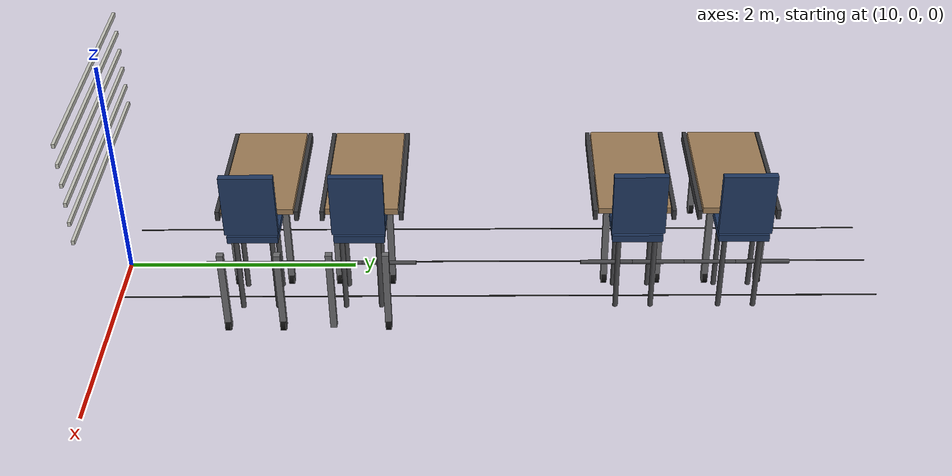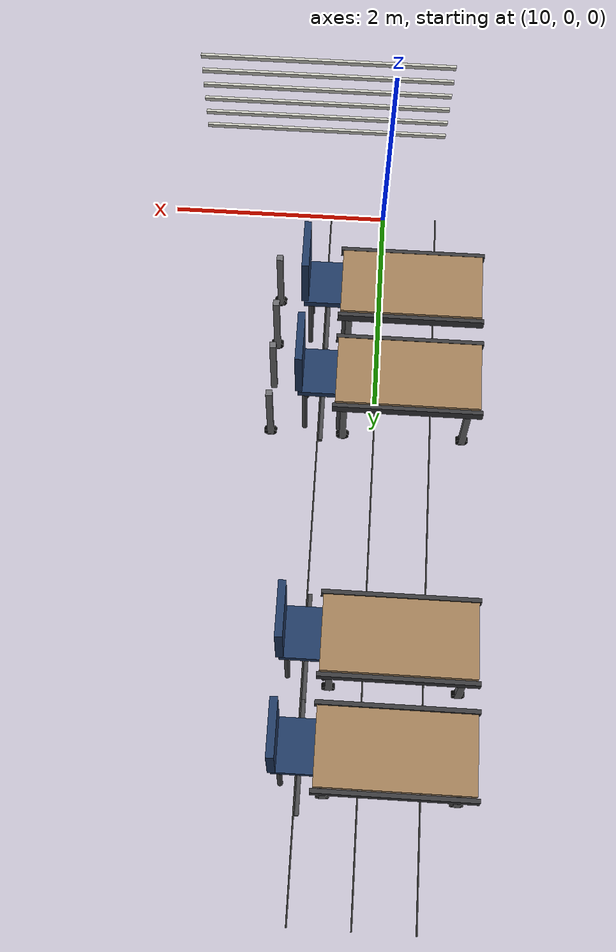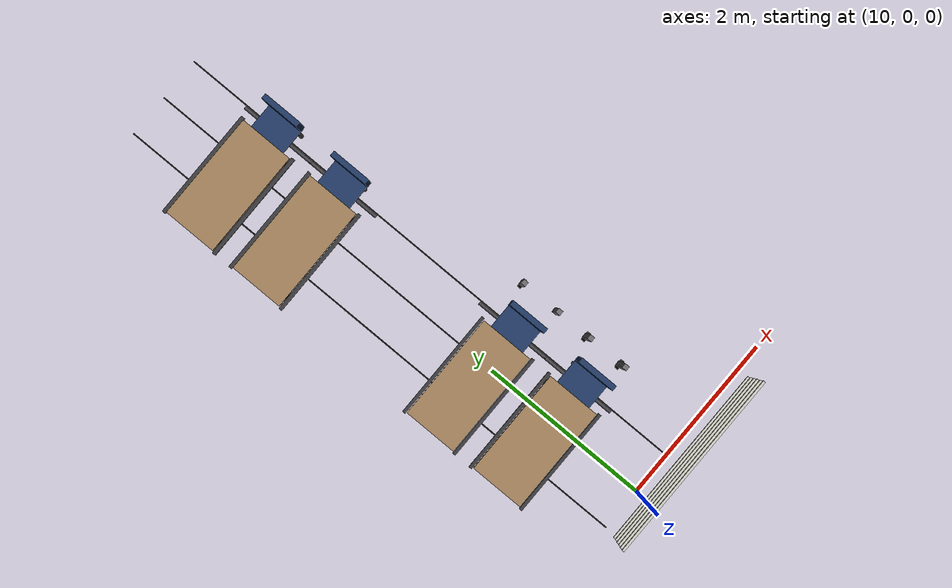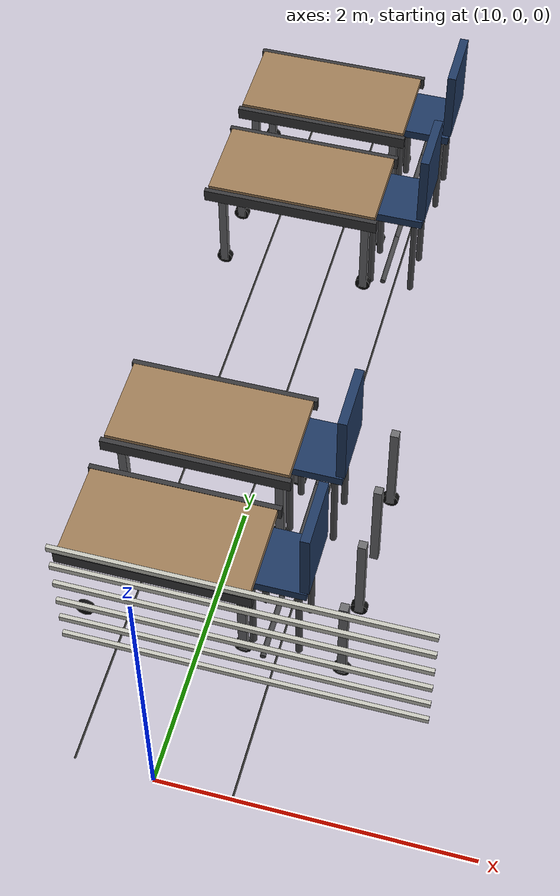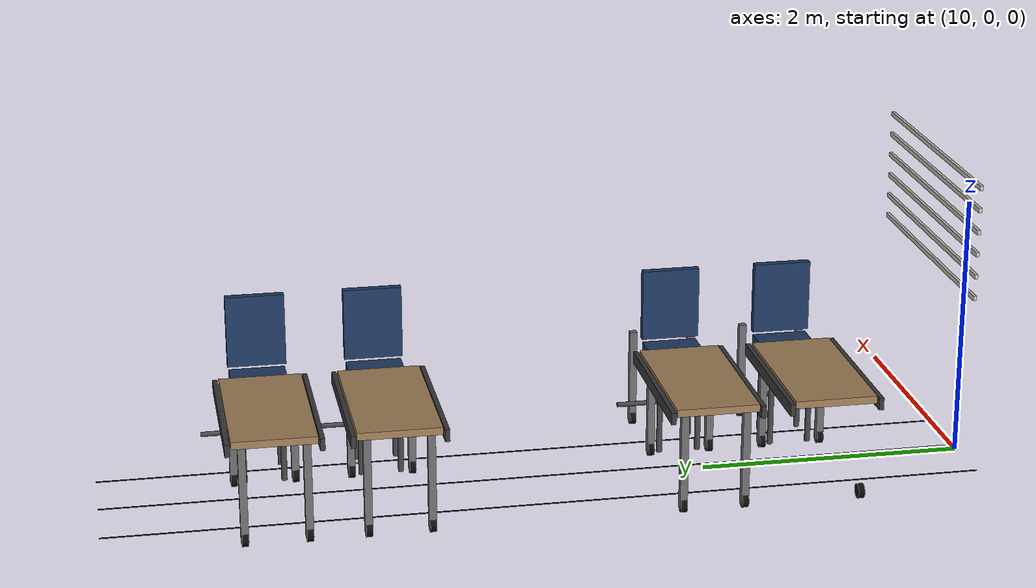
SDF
<sdf version="1.10">
 <model name="room_427_furnishings">
  <static>true</static>
  <link name="tile_seam_x_19">
   <pose>9.5 3.27 0.032 0 0 0</pose>
   <visual name="visual">
    <geometry><box><size>0.012 6.54 0.004</size></box></geometry>
    <material>
     <ambient>0.13 0.13 0.13 1</ambient>
     <diffuse>0.16 0.16 0.15 1</diffuse>
     <specular>0.04 0.04 0.04 1</specular>
    </material>
   </visual>
  </link>
  <link name="tile_seam_x_20">
   <pose>10 3.27 0.032 0 0 0</pose>
   <visual name="visual">
    <geometry><box><size>0.012 6.54 0.004</size></box></geometry>
    <material>
     <ambient>0.13 0.13 0.13 1</ambient>
     <diffuse>0.16 0.16 0.15 1</diffuse>
     <specular>0.04 0.04 0.04 1</specular>
    </material>
   </visual>
  </link>
  <link name="tile_seam_x_21">
   <pose>10.5 3.27 0.032 0 0 0</pose>
   <visual name="visual">
    <geometry><box><size>0.012 6.54 0.004</size></box></geometry>
    <material>
     <ambient>0.13 0.13 0.13 1</ambient>
     <diffuse>0.16 0.16 0.15 1</diffuse>
     <specular>0.04 0.04 0.04 1</specular>
    </material>
   </visual>
  </link>
  <link name="blind_4_1">
   <pose>10.57 0.085 2.25 0 0 0</pose>
   <visual name="visual">
    <geometry><box><size>2.06 0.024 0.035</size></box></geometry>
    <material>
     <ambient>0.72 0.72 0.68 1</ambient>
     <diffuse>0.78 0.78 0.74 1</diffuse>
     <specular>0.12 0.12 0.12 1</specular>
    </material>
   </visual>
  </link>
  <link name="blind_4_2">
   <pose>10.57 0.085 2.08 0 0 0</pose>
   <visual name="visual">
    <geometry><box><size>2.06 0.024 0.035</size></box></geometry>
    <material>
     <ambient>0.72 0.72 0.68 1</ambient>
     <diffuse>0.78 0.78 0.74 1</diffuse>
     <specular>0.12 0.12 0.12 1</specular>
    </material>
   </visual>
  </link>
  <link name="blind_4_3">
   <pose>10.57 0.085 1.91 0 0 0</pose>
   <visual name="visual">
    <geometry><box><size>2.06 0.024 0.035</size></box></geometry>
    <material>
     <ambient>0.72 0.72 0.68 1</ambient>
     <diffuse>0.78 0.78 0.74 1</diffuse>
     <specular>0.12 0.12 0.12 1</specular>
    </material>
   </visual>
  </link>
  <link name="blind_4_4">
   <pose>10.57 0.085 1.74 0 0 0</pose>
   <visual name="visual">
    <geometry><box><size>2.06 0.024 0.035</size></box></geometry>
    <material>
     <ambient>0.72 0.72 0.68 1</ambient>
     <diffuse>0.78 0.78 0.74 1</diffuse>
     <specular>0.12 0.12 0.12 1</specular>
    </material>
   </visual>
  </link>
  <link name="blind_4_5">
   <pose>10.57 0.085 1.57 0 0 0</pose>
   <visual name="visual">
    <geometry><box><size>2.06 0.024 0.035</size></box></geometry>
    <material>
     <ambient>0.72 0.72 0.68 1</ambient>
     <diffuse>0.78 0.78 0.74 1</diffuse>
     <specular>0.12 0.12 0.12 1</specular>
    </material>
   </visual>
  </link>
  <link name="blind_4_6">
   <pose>10.57 0.085 1.4 0 0 0</pose>
   <visual name="visual">
    <geometry><box><size>2.06 0.024 0.035</size></box></geometry>
    <material>
     <ambient>0.72 0.72 0.68 1</ambient>
     <diffuse>0.78 0.78 0.74 1</diffuse>
     <specular>0.12 0.12 0.12 1</specular>
    </material>
   </visual>
  </link>
  <link name="tall_mobile_table_5_top">
   <pose>9.75 1.24 0.82 0 0 0</pose>
   <collision name="collision"><geometry><box><size>1.22 0.61 0.055</size></box></geometry></collision>
   <visual name="visual">
    <geometry><box><size>1.22 0.61 0.055</size></box></geometry>
    <material>
     <ambient>0.58 0.46 0.32 1</ambient>
     <diffuse>0.62 0.49 0.34 1</diffuse>
     <specular>0.22 0.18 0.12 1</specular>
    </material>
   </visual>
  </link>
  <link name="tall_mobile_table_5_front_edge">
   <pose>9.75 1.572 0.79 0 0 0</pose>
   <collision name="collision"><geometry><box><size>1.26 0.035 0.09</size></box></geometry></collision>
   <visual name="visual">
    <geometry><box><size>1.26 0.035 0.09</size></box></geometry>
    <material>
     <ambient>0.18 0.18 0.19 1</ambient>
     <diffuse>0.22 0.22 0.23 1</diffuse>
     <specular>0.35 0.35 0.35 1</specular>
    </material>
   </visual>
  </link>
  <link name="tall_mobile_table_5_back_edge">
   <pose>9.75 0.908 0.79 0 0 0</pose>
   <collision name="collision"><geometry><box><size>1.26 0.035 0.09</size></box></geometry></collision>
   <visual name="visual">
    <geometry><box><size>1.26 0.035 0.09</size></box></geometry>
    <material>
     <ambient>0.18 0.18 0.19 1</ambient>
     <diffuse>0.22 0.22 0.23 1</diffuse>
     <specular>0.35 0.35 0.35 1</specular>
    </material>
   </visual>
  </link>
  <link name="tall_mobile_table_5_leg_1">
   <pose>10.28 1.47 0.42 0 0 0</pose>
   <collision name="collision"><geometry><box><size>0.055 0.055 0.74</size></box></geometry></collision>
   <visual name="visual">
    <geometry><box><size>0.055 0.055 0.74</size></box></geometry>
    <material>
     <ambient>0.36 0.36 0.37 1</ambient>
     <diffuse>0.42 0.42 0.43 1</diffuse>
     <specular>0.45 0.45 0.45 1</specular>
    </material>
   </visual>
  </link>
  <link name="tall_mobile_table_5_caster_1">
   <pose>10.28 1.47 0.07 1.5708 0 0</pose>
   <collision name="collision">
    <geometry><cylinder><radius>0.055</radius><length>0.045</length></cylinder></geometry>
   </collision>
   <visual name="visual">
    <geometry><cylinder><radius>0.055</radius><length>0.045</length></cylinder></geometry>
    <material>
     <ambient>0.035 0.035 0.035 1</ambient>
     <diffuse>0.045 0.045 0.045 1</diffuse>
     <specular>0.08 0.08 0.08 1</specular>
    </material>
   </visual>
  </link>
  <link name="tall_mobile_table_5_leg_2">
   <pose>10.28 1.01 0.42 0 0 0</pose>
   <collision name="collision"><geometry><box><size>0.055 0.055 0.74</size></box></geometry></collision>
   <visual name="visual">
    <geometry><box><size>0.055 0.055 0.74</size></box></geometry>
    <material>
     <ambient>0.36 0.36 0.37 1</ambient>
     <diffuse>0.42 0.42 0.43 1</diffuse>
     <specular>0.45 0.45 0.45 1</specular>
    </material>
   </visual>
  </link>
  <link name="tall_mobile_table_5_caster_2">
   <pose>10.28 1.01 0.07 1.5708 0 0</pose>
   <collision name="collision">
    <geometry><cylinder><radius>0.055</radius><length>0.045</length></cylinder></geometry>
   </collision>
   <visual name="visual">
    <geometry><cylinder><radius>0.055</radius><length>0.045</length></cylinder></geometry>
    <material>
     <ambient>0.035 0.035 0.035 1</ambient>
     <diffuse>0.045 0.045 0.045 1</diffuse>
     <specular>0.08 0.08 0.08 1</specular>
    </material>
   </visual>
  </link>
  <link name="tall_mobile_table_5_caster_4">
   <pose>9.22 1.01 0.07 1.5708 0 0</pose>
   <collision name="collision">
    <geometry><cylinder><radius>0.055</radius><length>0.045</length></cylinder></geometry>
   </collision>
   <visual name="visual">
    <geometry><cylinder><radius>0.055</radius><length>0.045</length></cylinder></geometry>
    <material>
     <ambient>0.035 0.035 0.035 1</ambient>
     <diffuse>0.045 0.045 0.045 1</diffuse>
     <specular>0.08 0.08 0.08 1</specular>
    </material>
   </visual>
  </link>
  <link name="high_chair_5_seat">
   <pose>10.47 1.24 0.76 0 0 3.1416</pose>
   <collision name="collision"><geometry><box><size>0.42 0.42 0.065</size></box></geometry></collision>
   <visual name="visual">
    <geometry><box><size>0.42 0.42 0.065</size></box></geometry>
    <material>
     <ambient>0.10 0.17 0.28 1</ambient>
     <diffuse>0.12 0.22 0.38 1</diffuse>
     <specular>0.18 0.2 0.24 1</specular>
    </material>
   </visual>
  </link>
  <link name="high_chair_5_back">
   <pose>10.67 1.24 1.1 0 0 3.1416</pose>
   <collision name="collision"><geometry><box><size>0.06 0.44 0.55</size></box></geometry></collision>
   <visual name="visual">
    <geometry><box><size>0.06 0.44 0.55</size></box></geometry>
    <material>
     <ambient>0.10 0.17 0.28 1</ambient>
     <diffuse>0.12 0.22 0.38 1</diffuse>
     <specular>0.18 0.2 0.24 1</specular>
    </material>
   </visual>
  </link>
  <link name="high_chair_5_leg_1">
   <pose>10.32 1.09 0.39 0 0 3.1416</pose>
   <collision name="collision">
    <geometry><cylinder><radius>0.022</radius><length>0.74</length></cylinder></geometry>
   </collision>
   <visual name="visual">
    <geometry><cylinder><radius>0.022</radius><length>0.74</length></cylinder></geometry>
    <material>
     <ambient>0.20 0.20 0.21 1</ambient>
     <diffuse>0.27 0.27 0.28 1</diffuse>
     <specular>0.35 0.35 0.35 1</specular>
    </material>
   </visual>
  </link>
  <link name="high_chair_5_leg_2">
   <pose>10.32 1.39 0.39 0 0 3.1416</pose>
   <collision name="collision">
    <geometry><cylinder><radius>0.022</radius><length>0.74</length></cylinder></geometry>
   </collision>
   <visual name="visual">
    <geometry><cylinder><radius>0.022</radius><length>0.74</length></cylinder></geometry>
    <material>
     <ambient>0.20 0.20 0.21 1</ambient>
     <diffuse>0.27 0.27 0.28 1</diffuse>
     <specular>0.35 0.35 0.35 1</specular>
    </material>
   </visual>
  </link>
  <link name="high_chair_5_leg_3">
   <pose>10.62 1.09 0.39 0 0 3.1416</pose>
   <collision name="collision">
    <geometry><cylinder><radius>0.022</radius><length>0.74</length></cylinder></geometry>
   </collision>
   <visual name="visual">
    <geometry><cylinder><radius>0.022</radius><length>0.74</length></cylinder></geometry>
    <material>
     <ambient>0.20 0.20 0.21 1</ambient>
     <diffuse>0.27 0.27 0.28 1</diffuse>
     <specular>0.35 0.35 0.35 1</specular>
    </material>
   </visual>
  </link>
  <link name="high_chair_5_leg_4">
   <pose>10.62 1.39 0.39 0 0 3.1416</pose>
   <collision name="collision">
    <geometry><cylinder><radius>0.022</radius><length>0.74</length></cylinder></geometry>
   </collision>
   <visual name="visual">
    <geometry><cylinder><radius>0.022</radius><length>0.74</length></cylinder></geometry>
    <material>
     <ambient>0.20 0.20 0.21 1</ambient>
     <diffuse>0.27 0.27 0.28 1</diffuse>
     <specular>0.35 0.35 0.35 1</specular>
    </material>
   </visual>
  </link>
  <link name="high_chair_5_foot_ring_front">
   <pose>10.47 1.02 0.37 1.5708 0 3.1416</pose>
   <visual name="visual">
    <geometry><cylinder><radius>0.018</radius><length>0.46</length></cylinder></geometry>
    <material>
     <ambient>0.20 0.20 0.21 1</ambient>
     <diffuse>0.27 0.27 0.28 1</diffuse>
     <specular>0.35 0.35 0.35 1</specular>
    </material>
   </visual>
  </link>
  <link name="high_chair_5_foot_ring_back">
   <pose>10.47 1.46 0.37 1.5708 0 3.1416</pose>
   <visual name="visual">
    <geometry><cylinder><radius>0.018</radius><length>0.46</length></cylinder></geometry>
    <material>
     <ambient>0.20 0.20 0.21 1</ambient>
     <diffuse>0.27 0.27 0.28 1</diffuse>
     <specular>0.35 0.35 0.35 1</specular>
    </material>
   </visual>
  </link>
  <link name="tall_mobile_table_6_top">
   <pose>9.75 2.12 0.82 0 0 0</pose>
   <collision name="collision"><geometry><box><size>1.22 0.61 0.055</size></box></geometry></collision>
   <visual name="visual">
    <geometry><box><size>1.22 0.61 0.055</size></box></geometry>
    <material>
     <ambient>0.58 0.46 0.32 1</ambient>
     <diffuse>0.62 0.49 0.34 1</diffuse>
     <specular>0.22 0.18 0.12 1</specular>
    </material>
   </visual>
  </link>
  <link name="tall_mobile_table_6_front_edge">
   <pose>9.75 2.452 0.79 0 0 0</pose>
   <collision name="collision"><geometry><box><size>1.26 0.035 0.09</size></box></geometry></collision>
   <visual name="visual">
    <geometry><box><size>1.26 0.035 0.09</size></box></geometry>
    <material>
     <ambient>0.18 0.18 0.19 1</ambient>
     <diffuse>0.22 0.22 0.23 1</diffuse>
     <specular>0.35 0.35 0.35 1</specular>
    </material>
   </visual>
  </link>
  <link name="tall_mobile_table_6_back_edge">
   <pose>9.75 1.788 0.79 0 0 0</pose>
   <collision name="collision"><geometry><box><size>1.26 0.035 0.09</size></box></geometry></collision>
   <visual name="visual">
    <geometry><box><size>1.26 0.035 0.09</size></box></geometry>
    <material>
     <ambient>0.18 0.18 0.19 1</ambient>
     <diffuse>0.22 0.22 0.23 1</diffuse>
     <specular>0.35 0.35 0.35 1</specular>
    </material>
   </visual>
  </link>
  <link name="tall_mobile_table_6_leg_1">
   <pose>10.28 2.35 0.42 0 0 0</pose>
   <collision name="collision"><geometry><box><size>0.055 0.055 0.74</size></box></geometry></collision>
   <visual name="visual">
    <geometry><box><size>0.055 0.055 0.74</size></box></geometry>
    <material>
     <ambient>0.36 0.36 0.37 1</ambient>
     <diffuse>0.42 0.42 0.43 1</diffuse>
     <specular>0.45 0.45 0.45 1</specular>
    </material>
   </visual>
  </link>
  <link name="tall_mobile_table_6_caster_1">
   <pose>10.28 2.35 0.07 1.5708 0 0</pose>
   <collision name="collision">
    <geometry><cylinder><radius>0.055</radius><length>0.045</length></cylinder></geometry>
   </collision>
   <visual name="visual">
    <geometry><cylinder><radius>0.055</radius><length>0.045</length></cylinder></geometry>
    <material>
     <ambient>0.035 0.035 0.035 1</ambient>
     <diffuse>0.045 0.045 0.045 1</diffuse>
     <specular>0.08 0.08 0.08 1</specular>
    </material>
   </visual>
  </link>
  <link name="tall_mobile_table_6_leg_2">
   <pose>10.28 1.89 0.42 0 0 0</pose>
   <collision name="collision"><geometry><box><size>0.055 0.055 0.74</size></box></geometry></collision>
   <visual name="visual">
    <geometry><box><size>0.055 0.055 0.74</size></box></geometry>
    <material>
     <ambient>0.36 0.36 0.37 1</ambient>
     <diffuse>0.42 0.42 0.43 1</diffuse>
     <specular>0.45 0.45 0.45 1</specular>
    </material>
   </visual>
  </link>
  <link name="tall_mobile_table_6_caster_2">
   <pose>10.28 1.89 0.07 1.5708 0 0</pose>
   <collision name="collision">
    <geometry><cylinder><radius>0.055</radius><length>0.045</length></cylinder></geometry>
   </collision>
   <visual name="visual">
    <geometry><cylinder><radius>0.055</radius><length>0.045</length></cylinder></geometry>
    <material>
     <ambient>0.035 0.035 0.035 1</ambient>
     <diffuse>0.045 0.045 0.045 1</diffuse>
     <specular>0.08 0.08 0.08 1</specular>
    </material>
   </visual>
  </link>
  <link name="tall_mobile_table_6_leg_3">
   <pose>9.22 2.35 0.42 0 0 0</pose>
   <collision name="collision"><geometry><box><size>0.055 0.055 0.74</size></box></geometry></collision>
   <visual name="visual">
    <geometry><box><size>0.055 0.055 0.74</size></box></geometry>
    <material>
     <ambient>0.36 0.36 0.37 1</ambient>
     <diffuse>0.42 0.42 0.43 1</diffuse>
     <specular>0.45 0.45 0.45 1</specular>
    </material>
   </visual>
  </link>
  <link name="tall_mobile_table_6_caster_3">
   <pose>9.22 2.35 0.07 1.5708 0 0</pose>
   <collision name="collision">
    <geometry><cylinder><radius>0.055</radius><length>0.045</length></cylinder></geometry>
   </collision>
   <visual name="visual">
    <geometry><cylinder><radius>0.055</radius><length>0.045</length></cylinder></geometry>
    <material>
     <ambient>0.035 0.035 0.035 1</ambient>
     <diffuse>0.045 0.045 0.045 1</diffuse>
     <specular>0.08 0.08 0.08 1</specular>
    </material>
   </visual>
  </link>
  <link name="tall_mobile_table_6_leg_4">
   <pose>9.22 1.89 0.42 0 0 0</pose>
   <collision name="collision"><geometry><box><size>0.055 0.055 0.74</size></box></geometry></collision>
   <visual name="visual">
    <geometry><box><size>0.055 0.055 0.74</size></box></geometry>
    <material>
     <ambient>0.36 0.36 0.37 1</ambient>
     <diffuse>0.42 0.42 0.43 1</diffuse>
     <specular>0.45 0.45 0.45 1</specular>
    </material>
   </visual>
  </link>
  <link name="tall_mobile_table_6_caster_4">
   <pose>9.22 1.89 0.07 1.5708 0 0</pose>
   <collision name="collision">
    <geometry><cylinder><radius>0.055</radius><length>0.045</length></cylinder></geometry>
   </collision>
   <visual name="visual">
    <geometry><cylinder><radius>0.055</radius><length>0.045</length></cylinder></geometry>
    <material>
     <ambient>0.035 0.035 0.035 1</ambient>
     <diffuse>0.045 0.045 0.045 1</diffuse>
     <specular>0.08 0.08 0.08 1</specular>
    </material>
   </visual>
  </link>
  <link name="high_chair_6_seat">
   <pose>10.47 2.12 0.76 0 0 3.1416</pose>
   <collision name="collision"><geometry><box><size>0.42 0.42 0.065</size></box></geometry></collision>
   <visual name="visual">
    <geometry><box><size>0.42 0.42 0.065</size></box></geometry>
    <material>
     <ambient>0.10 0.17 0.28 1</ambient>
     <diffuse>0.12 0.22 0.38 1</diffuse>
     <specular>0.18 0.2 0.24 1</specular>
    </material>
   </visual>
  </link>
  <link name="high_chair_6_back">
   <pose>10.67 2.12 1.1 0 0 3.1416</pose>
   <collision name="collision"><geometry><box><size>0.06 0.44 0.55</size></box></geometry></collision>
   <visual name="visual">
    <geometry><box><size>0.06 0.44 0.55</size></box></geometry>
    <material>
     <ambient>0.10 0.17 0.28 1</ambient>
     <diffuse>0.12 0.22 0.38 1</diffuse>
     <specular>0.18 0.2 0.24 1</specular>
    </material>
   </visual>
  </link>
  <link name="high_chair_6_leg_1">
   <pose>10.32 1.97 0.39 0 0 3.1416</pose>
   <collision name="collision">
    <geometry><cylinder><radius>0.022</radius><length>0.74</length></cylinder></geometry>
   </collision>
   <visual name="visual">
    <geometry><cylinder><radius>0.022</radius><length>0.74</length></cylinder></geometry>
    <material>
     <ambient>0.20 0.20 0.21 1</ambient>
     <diffuse>0.27 0.27 0.28 1</diffuse>
     <specular>0.35 0.35 0.35 1</specular>
    </material>
   </visual>
  </link>
  <link name="high_chair_6_leg_2">
   <pose>10.32 2.27 0.39 0 0 3.1416</pose>
   <collision name="collision">
    <geometry><cylinder><radius>0.022</radius><length>0.74</length></cylinder></geometry>
   </collision>
   <visual name="visual">
    <geometry><cylinder><radius>0.022</radius><length>0.74</length></cylinder></geometry>
    <material>
     <ambient>0.20 0.20 0.21 1</ambient>
     <diffuse>0.27 0.27 0.28 1</diffuse>
     <specular>0.35 0.35 0.35 1</specular>
    </material>
   </visual>
  </link>
  <link name="high_chair_6_leg_3">
   <pose>10.62 1.97 0.39 0 0 3.1416</pose>
   <collision name="collision">
    <geometry><cylinder><radius>0.022</radius><length>0.74</length></cylinder></geometry>
   </collision>
   <visual name="visual">
    <geometry><cylinder><radius>0.022</radius><length>0.74</length></cylinder></geometry>
    <material>
     <ambient>0.20 0.20 0.21 1</ambient>
     <diffuse>0.27 0.27 0.28 1</diffuse>
     <specular>0.35 0.35 0.35 1</specular>
    </material>
   </visual>
  </link>
  <link name="high_chair_6_leg_4">
   <pose>10.62 2.27 0.39 0 0 3.1416</pose>
   <collision name="collision">
    <geometry><cylinder><radius>0.022</radius><length>0.74</length></cylinder></geometry>
   </collision>
   <visual name="visual">
    <geometry><cylinder><radius>0.022</radius><length>0.74</length></cylinder></geometry>
    <material>
     <ambient>0.20 0.20 0.21 1</ambient>
     <diffuse>0.27 0.27 0.28 1</diffuse>
     <specular>0.35 0.35 0.35 1</specular>
    </material>
   </visual>
  </link>
  <link name="high_chair_6_foot_ring_front">
   <pose>10.47 1.9 0.37 1.5708 0 3.1416</pose>
   <visual name="visual">
    <geometry><cylinder><radius>0.018</radius><length>0.46</length></cylinder></geometry>
    <material>
     <ambient>0.20 0.20 0.21 1</ambient>
     <diffuse>0.27 0.27 0.28 1</diffuse>
     <specular>0.35 0.35 0.35 1</specular>
    </material>
   </visual>
  </link>
  <link name="high_chair_6_foot_ring_back">
   <pose>10.47 2.34 0.37 1.5708 0 3.1416</pose>
   <visual name="visual">
    <geometry><cylinder><radius>0.018</radius><length>0.46</length></cylinder></geometry>
    <material>
     <ambient>0.20 0.20 0.21 1</ambient>
     <diffuse>0.27 0.27 0.28 1</diffuse>
     <specular>0.35 0.35 0.35 1</specular>
    </material>
   </visual>
  </link>
  <link name="tall_mobile_table_7_top">
   <pose>9.75 4.42 0.82 0 0 0</pose>
   <collision name="collision"><geometry><box><size>1.22 0.61 0.055</size></box></geometry></collision>
   <visual name="visual">
    <geometry><box><size>1.22 0.61 0.055</size></box></geometry>
    <material>
     <ambient>0.58 0.46 0.32 1</ambient>
     <diffuse>0.62 0.49 0.34 1</diffuse>
     <specular>0.22 0.18 0.12 1</specular>
    </material>
   </visual>
  </link>
  <link name="tall_mobile_table_7_front_edge">
   <pose>9.75 4.752 0.79 0 0 0</pose>
   <collision name="collision"><geometry><box><size>1.26 0.035 0.09</size></box></geometry></collision>
   <visual name="visual">
    <geometry><box><size>1.26 0.035 0.09</size></box></geometry>
    <material>
     <ambient>0.18 0.18 0.19 1</ambient>
     <diffuse>0.22 0.22 0.23 1</diffuse>
     <specular>0.35 0.35 0.35 1</specular>
    </material>
   </visual>
  </link>
  <link name="tall_mobile_table_7_back_edge">
   <pose>9.75 4.088 0.79 0 0 0</pose>
   <collision name="collision"><geometry><box><size>1.26 0.035 0.09</size></box></geometry></collision>
   <visual name="visual">
    <geometry><box><size>1.26 0.035 0.09</size></box></geometry>
    <material>
     <ambient>0.18 0.18 0.19 1</ambient>
     <diffuse>0.22 0.22 0.23 1</diffuse>
     <specular>0.35 0.35 0.35 1</specular>
    </material>
   </visual>
  </link>
  <link name="tall_mobile_table_7_leg_1">
   <pose>10.28 4.65 0.42 0 0 0</pose>
   <collision name="collision"><geometry><box><size>0.055 0.055 0.74</size></box></geometry></collision>
   <visual name="visual">
    <geometry><box><size>0.055 0.055 0.74</size></box></geometry>
    <material>
     <ambient>0.36 0.36 0.37 1</ambient>
     <diffuse>0.42 0.42 0.43 1</diffuse>
     <specular>0.45 0.45 0.45 1</specular>
    </material>
   </visual>
  </link>
  <link name="tall_mobile_table_7_caster_1">
   <pose>10.28 4.65 0.07 1.5708 0 0</pose>
   <collision name="collision">
    <geometry><cylinder><radius>0.055</radius><length>0.045</length></cylinder></geometry>
   </collision>
   <visual name="visual">
    <geometry><cylinder><radius>0.055</radius><length>0.045</length></cylinder></geometry>
    <material>
     <ambient>0.035 0.035 0.035 1</ambient>
     <diffuse>0.045 0.045 0.045 1</diffuse>
     <specular>0.08 0.08 0.08 1</specular>
    </material>
   </visual>
  </link>
  <link name="tall_mobile_table_7_leg_2">
   <pose>10.28 4.19 0.42 0 0 0</pose>
   <collision name="collision"><geometry><box><size>0.055 0.055 0.74</size></box></geometry></collision>
   <visual name="visual">
    <geometry><box><size>0.055 0.055 0.74</size></box></geometry>
    <material>
     <ambient>0.36 0.36 0.37 1</ambient>
     <diffuse>0.42 0.42 0.43 1</diffuse>
     <specular>0.45 0.45 0.45 1</specular>
    </material>
   </visual>
  </link>
  <link name="tall_mobile_table_7_caster_2">
   <pose>10.28 4.19 0.07 1.5708 0 0</pose>
   <collision name="collision">
    <geometry><cylinder><radius>0.055</radius><length>0.045</length></cylinder></geometry>
   </collision>
   <visual name="visual">
    <geometry><cylinder><radius>0.055</radius><length>0.045</length></cylinder></geometry>
    <material>
     <ambient>0.035 0.035 0.035 1</ambient>
     <diffuse>0.045 0.045 0.045 1</diffuse>
     <specular>0.08 0.08 0.08 1</specular>
    </material>
   </visual>
  </link>
  <link name="tall_mobile_table_7_leg_3">
   <pose>9.22 4.65 0.42 0 0 0</pose>
   <collision name="collision"><geometry><box><size>0.055 0.055 0.74</size></box></geometry></collision>
   <visual name="visual">
    <geometry><box><size>0.055 0.055 0.74</size></box></geometry>
    <material>
     <ambient>0.36 0.36 0.37 1</ambient>
     <diffuse>0.42 0.42 0.43 1</diffuse>
     <specular>0.45 0.45 0.45 1</specular>
    </material>
   </visual>
  </link>
  <link name="tall_mobile_table_7_caster_3">
   <pose>9.22 4.65 0.07 1.5708 0 0</pose>
   <collision name="collision">
    <geometry><cylinder><radius>0.055</radius><length>0.045</length></cylinder></geometry>
   </collision>
   <visual name="visual">
    <geometry><cylinder><radius>0.055</radius><length>0.045</length></cylinder></geometry>
    <material>
     <ambient>0.035 0.035 0.035 1</ambient>
     <diffuse>0.045 0.045 0.045 1</diffuse>
     <specular>0.08 0.08 0.08 1</specular>
    </material>
   </visual>
  </link>
  <link name="tall_mobile_table_7_leg_4">
   <pose>9.22 4.19 0.42 0 0 0</pose>
   <collision name="collision"><geometry><box><size>0.055 0.055 0.74</size></box></geometry></collision>
   <visual name="visual">
    <geometry><box><size>0.055 0.055 0.74</size></box></geometry>
    <material>
     <ambient>0.36 0.36 0.37 1</ambient>
     <diffuse>0.42 0.42 0.43 1</diffuse>
     <specular>0.45 0.45 0.45 1</specular>
    </material>
   </visual>
  </link>
  <link name="tall_mobile_table_7_caster_4">
   <pose>9.22 4.19 0.07 1.5708 0 0</pose>
   <collision name="collision">
    <geometry><cylinder><radius>0.055</radius><length>0.045</length></cylinder></geometry>
   </collision>
   <visual name="visual">
    <geometry><cylinder><radius>0.055</radius><length>0.045</length></cylinder></geometry>
    <material>
     <ambient>0.035 0.035 0.035 1</ambient>
     <diffuse>0.045 0.045 0.045 1</diffuse>
     <specular>0.08 0.08 0.08 1</specular>
    </material>
   </visual>
  </link>
  <link name="high_chair_7_seat">
   <pose>10.47 4.42 0.76 0 0 3.1416</pose>
   <collision name="collision"><geometry><box><size>0.42 0.42 0.065</size></box></geometry></collision>
   <visual name="visual">
    <geometry><box><size>0.42 0.42 0.065</size></box></geometry>
    <material>
     <ambient>0.10 0.17 0.28 1</ambient>
     <diffuse>0.12 0.22 0.38 1</diffuse>
     <specular>0.18 0.2 0.24 1</specular>
    </material>
   </visual>
  </link>
  <link name="high_chair_7_back">
   <pose>10.67 4.42 1.1 0 0 3.1416</pose>
   <collision name="collision"><geometry><box><size>0.06 0.44 0.55</size></box></geometry></collision>
   <visual name="visual">
    <geometry><box><size>0.06 0.44 0.55</size></box></geometry>
    <material>
     <ambient>0.10 0.17 0.28 1</ambient>
     <diffuse>0.12 0.22 0.38 1</diffuse>
     <specular>0.18 0.2 0.24 1</specular>
    </material>
   </visual>
  </link>
  <link name="high_chair_7_leg_1">
   <pose>10.32 4.27 0.39 0 0 3.1416</pose>
   <collision name="collision">
    <geometry><cylinder><radius>0.022</radius><length>0.74</length></cylinder></geometry>
   </collision>
   <visual name="visual">
    <geometry><cylinder><radius>0.022</radius><length>0.74</length></cylinder></geometry>
    <material>
     <ambient>0.20 0.20 0.21 1</ambient>
     <diffuse>0.27 0.27 0.28 1</diffuse>
     <specular>0.35 0.35 0.35 1</specular>
    </material>
   </visual>
  </link>
  <link name="high_chair_7_leg_2">
   <pose>10.32 4.57 0.39 0 0 3.1416</pose>
   <collision name="collision">
    <geometry><cylinder><radius>0.022</radius><length>0.74</length></cylinder></geometry>
   </collision>
   <visual name="visual">
    <geometry><cylinder><radius>0.022</radius><length>0.74</length></cylinder></geometry>
    <material>
     <ambient>0.20 0.20 0.21 1</ambient>
     <diffuse>0.27 0.27 0.28 1</diffuse>
     <specular>0.35 0.35 0.35 1</specular>
    </material>
   </visual>
  </link>
  <link name="high_chair_7_leg_3">
   <pose>10.62 4.27 0.39 0 0 3.1416</pose>
   <collision name="collision">
    <geometry><cylinder><radius>0.022</radius><length>0.74</length></cylinder></geometry>
   </collision>
   <visual name="visual">
    <geometry><cylinder><radius>0.022</radius><length>0.74</length></cylinder></geometry>
    <material>
     <ambient>0.20 0.20 0.21 1</ambient>
     <diffuse>0.27 0.27 0.28 1</diffuse>
     <specular>0.35 0.35 0.35 1</specular>
    </material>
   </visual>
  </link>
  <link name="high_chair_7_leg_4">
   <pose>10.62 4.57 0.39 0 0 3.1416</pose>
   <collision name="collision">
    <geometry><cylinder><radius>0.022</radius><length>0.74</length></cylinder></geometry>
   </collision>
   <visual name="visual">
    <geometry><cylinder><radius>0.022</radius><length>0.74</length></cylinder></geometry>
    <material>
     <ambient>0.20 0.20 0.21 1</ambient>
     <diffuse>0.27 0.27 0.28 1</diffuse>
     <specular>0.35 0.35 0.35 1</specular>
    </material>
   </visual>
  </link>
  <link name="high_chair_7_foot_ring_front">
   <pose>10.47 4.2 0.37 1.5708 0 3.1416</pose>
   <visual name="visual">
    <geometry><cylinder><radius>0.018</radius><length>0.46</length></cylinder></geometry>
    <material>
     <ambient>0.20 0.20 0.21 1</ambient>
     <diffuse>0.27 0.27 0.28 1</diffuse>
     <specular>0.35 0.35 0.35 1</specular>
    </material>
   </visual>
  </link>
  <link name="high_chair_7_foot_ring_back">
   <pose>10.47 4.64 0.37 1.5708 0 3.1416</pose>
   <visual name="visual">
    <geometry><cylinder><radius>0.018</radius><length>0.46</length></cylinder></geometry>
    <material>
     <ambient>0.20 0.20 0.21 1</ambient>
     <diffuse>0.27 0.27 0.28 1</diffuse>
     <specular>0.35 0.35 0.35 1</specular>
    </material>
   </visual>
  </link>
  <link name="tall_mobile_table_8_top">
   <pose>9.75 5.3 0.82 0 0 0</pose>
   <collision name="collision"><geometry><box><size>1.22 0.61 0.055</size></box></geometry></collision>
   <visual name="visual">
    <geometry><box><size>1.22 0.61 0.055</size></box></geometry>
    <material>
     <ambient>0.58 0.46 0.32 1</ambient>
     <diffuse>0.62 0.49 0.34 1</diffuse>
     <specular>0.22 0.18 0.12 1</specular>
    </material>
   </visual>
  </link>
  <link name="tall_mobile_table_8_front_edge">
   <pose>9.75 5.632 0.79 0 0 0</pose>
   <collision name="collision"><geometry><box><size>1.26 0.035 0.09</size></box></geometry></collision>
   <visual name="visual">
    <geometry><box><size>1.26 0.035 0.09</size></box></geometry>
    <material>
     <ambient>0.18 0.18 0.19 1</ambient>
     <diffuse>0.22 0.22 0.23 1</diffuse>
     <specular>0.35 0.35 0.35 1</specular>
    </material>
   </visual>
  </link>
  <link name="tall_mobile_table_8_back_edge">
   <pose>9.75 4.968 0.79 0 0 0</pose>
   <collision name="collision"><geometry><box><size>1.26 0.035 0.09</size></box></geometry></collision>
   <visual name="visual">
    <geometry><box><size>1.26 0.035 0.09</size></box></geometry>
    <material>
     <ambient>0.18 0.18 0.19 1</ambient>
     <diffuse>0.22 0.22 0.23 1</diffuse>
     <specular>0.35 0.35 0.35 1</specular>
    </material>
   </visual>
  </link>
  <link name="tall_mobile_table_8_leg_1">
   <pose>10.28 5.53 0.42 0 0 0</pose>
   <collision name="collision"><geometry><box><size>0.055 0.055 0.74</size></box></geometry></collision>
   <visual name="visual">
    <geometry><box><size>0.055 0.055 0.74</size></box></geometry>
    <material>
     <ambient>0.36 0.36 0.37 1</ambient>
     <diffuse>0.42 0.42 0.43 1</diffuse>
     <specular>0.45 0.45 0.45 1</specular>
    </material>
   </visual>
  </link>
  <link name="tall_mobile_table_8_caster_1">
   <pose>10.28 5.53 0.07 1.5708 0 0</pose>
   <collision name="collision">
    <geometry><cylinder><radius>0.055</radius><length>0.045</length></cylinder></geometry>
   </collision>
   <visual name="visual">
    <geometry><cylinder><radius>0.055</radius><length>0.045</length></cylinder></geometry>
    <material>
     <ambient>0.035 0.035 0.035 1</ambient>
     <diffuse>0.045 0.045 0.045 1</diffuse>
     <specular>0.08 0.08 0.08 1</specular>
    </material>
   </visual>
  </link>
  <link name="tall_mobile_table_8_leg_2">
   <pose>10.28 5.07 0.42 0 0 0</pose>
   <collision name="collision"><geometry><box><size>0.055 0.055 0.74</size></box></geometry></collision>
   <visual name="visual">
    <geometry><box><size>0.055 0.055 0.74</size></box></geometry>
    <material>
     <ambient>0.36 0.36 0.37 1</ambient>
     <diffuse>0.42 0.42 0.43 1</diffuse>
     <specular>0.45 0.45 0.45 1</specular>
    </material>
   </visual>
  </link>
  <link name="tall_mobile_table_8_caster_2">
   <pose>10.28 5.07 0.07 1.5708 0 0</pose>
   <collision name="collision">
    <geometry><cylinder><radius>0.055</radius><length>0.045</length></cylinder></geometry>
   </collision>
   <visual name="visual">
    <geometry><cylinder><radius>0.055</radius><length>0.045</length></cylinder></geometry>
    <material>
     <ambient>0.035 0.035 0.035 1</ambient>
     <diffuse>0.045 0.045 0.045 1</diffuse>
     <specular>0.08 0.08 0.08 1</specular>
    </material>
   </visual>
  </link>
  <link name="tall_mobile_table_8_leg_3">
   <pose>9.22 5.53 0.42 0 0 0</pose>
   <collision name="collision"><geometry><box><size>0.055 0.055 0.74</size></box></geometry></collision>
   <visual name="visual">
    <geometry><box><size>0.055 0.055 0.74</size></box></geometry>
    <material>
     <ambient>0.36 0.36 0.37 1</ambient>
     <diffuse>0.42 0.42 0.43 1</diffuse>
     <specular>0.45 0.45 0.45 1</specular>
    </material>
   </visual>
  </link>
  <link name="tall_mobile_table_8_caster_3">
   <pose>9.22 5.53 0.07 1.5708 0 0</pose>
   <collision name="collision">
    <geometry><cylinder><radius>0.055</radius><length>0.045</length></cylinder></geometry>
   </collision>
   <visual name="visual">
    <geometry><cylinder><radius>0.055</radius><length>0.045</length></cylinder></geometry>
    <material>
     <ambient>0.035 0.035 0.035 1</ambient>
     <diffuse>0.045 0.045 0.045 1</diffuse>
     <specular>0.08 0.08 0.08 1</specular>
    </material>
   </visual>
  </link>
  <link name="tall_mobile_table_8_leg_4">
   <pose>9.22 5.07 0.42 0 0 0</pose>
   <collision name="collision"><geometry><box><size>0.055 0.055 0.74</size></box></geometry></collision>
   <visual name="visual">
    <geometry><box><size>0.055 0.055 0.74</size></box></geometry>
    <material>
     <ambient>0.36 0.36 0.37 1</ambient>
     <diffuse>0.42 0.42 0.43 1</diffuse>
     <specular>0.45 0.45 0.45 1</specular>
    </material>
   </visual>
  </link>
  <link name="tall_mobile_table_8_caster_4">
   <pose>9.22 5.07 0.07 1.5708 0 0</pose>
   <collision name="collision">
    <geometry><cylinder><radius>0.055</radius><length>0.045</length></cylinder></geometry>
   </collision>
   <visual name="visual">
    <geometry><cylinder><radius>0.055</radius><length>0.045</length></cylinder></geometry>
    <material>
     <ambient>0.035 0.035 0.035 1</ambient>
     <diffuse>0.045 0.045 0.045 1</diffuse>
     <specular>0.08 0.08 0.08 1</specular>
    </material>
   </visual>
  </link>
  <link name="high_chair_8_seat">
   <pose>10.47 5.3 0.76 0 0 3.1416</pose>
   <collision name="collision"><geometry><box><size>0.42 0.42 0.065</size></box></geometry></collision>
   <visual name="visual">
    <geometry><box><size>0.42 0.42 0.065</size></box></geometry>
    <material>
     <ambient>0.10 0.17 0.28 1</ambient>
     <diffuse>0.12 0.22 0.38 1</diffuse>
     <specular>0.18 0.2 0.24 1</specular>
    </material>
   </visual>
  </link>
  <link name="high_chair_8_back">
   <pose>10.67 5.3 1.1 0 0 3.1416</pose>
   <collision name="collision"><geometry><box><size>0.06 0.44 0.55</size></box></geometry></collision>
   <visual name="visual">
    <geometry><box><size>0.06 0.44 0.55</size></box></geometry>
    <material>
     <ambient>0.10 0.17 0.28 1</ambient>
     <diffuse>0.12 0.22 0.38 1</diffuse>
     <specular>0.18 0.2 0.24 1</specular>
    </material>
   </visual>
  </link>
  <link name="high_chair_8_leg_1">
   <pose>10.32 5.15 0.39 0 0 3.1416</pose>
   <collision name="collision">
    <geometry><cylinder><radius>0.022</radius><length>0.74</length></cylinder></geometry>
   </collision>
   <visual name="visual">
    <geometry><cylinder><radius>0.022</radius><length>0.74</length></cylinder></geometry>
    <material>
     <ambient>0.20 0.20 0.21 1</ambient>
     <diffuse>0.27 0.27 0.28 1</diffuse>
     <specular>0.35 0.35 0.35 1</specular>
    </material>
   </visual>
  </link>
  <link name="high_chair_8_leg_2">
   <pose>10.32 5.45 0.39 0 0 3.1416</pose>
   <collision name="collision">
    <geometry><cylinder><radius>0.022</radius><length>0.74</length></cylinder></geometry>
   </collision>
   <visual name="visual">
    <geometry><cylinder><radius>0.022</radius><length>0.74</length></cylinder></geometry>
    <material>
     <ambient>0.20 0.20 0.21 1</ambient>
     <diffuse>0.27 0.27 0.28 1</diffuse>
     <specular>0.35 0.35 0.35 1</specular>
    </material>
   </visual>
  </link>
  <link name="high_chair_8_leg_3">
   <pose>10.62 5.15 0.39 0 0 3.1416</pose>
   <collision name="collision">
    <geometry><cylinder><radius>0.022</radius><length>0.74</length></cylinder></geometry>
   </collision>
   <visual name="visual">
    <geometry><cylinder><radius>0.022</radius><length>0.74</length></cylinder></geometry>
    <material>
     <ambient>0.20 0.20 0.21 1</ambient>
     <diffuse>0.27 0.27 0.28 1</diffuse>
     <specular>0.35 0.35 0.35 1</specular>
    </material>
   </visual>
  </link>
  <link name="high_chair_8_leg_4">
   <pose>10.62 5.45 0.39 0 0 3.1416</pose>
   <collision name="collision">
    <geometry><cylinder><radius>0.022</radius><length>0.74</length></cylinder></geometry>
   </collision>
   <visual name="visual">
    <geometry><cylinder><radius>0.022</radius><length>0.74</length></cylinder></geometry>
    <material>
     <ambient>0.20 0.20 0.21 1</ambient>
     <diffuse>0.27 0.27 0.28 1</diffuse>
     <specular>0.35 0.35 0.35 1</specular>
    </material>
   </visual>
  </link>
  <link name="high_chair_8_foot_ring_front">
   <pose>10.47 5.08 0.37 1.5708 0 3.1416</pose>
   <visual name="visual">
    <geometry><cylinder><radius>0.018</radius><length>0.46</length></cylinder></geometry>
    <material>
     <ambient>0.20 0.20 0.21 1</ambient>
     <diffuse>0.27 0.27 0.28 1</diffuse>
     <specular>0.35 0.35 0.35 1</specular>
    </material>
   </visual>
  </link>
  <link name="high_chair_8_foot_ring_back">
   <pose>10.47 5.52 0.37 1.5708 0 3.1416</pose>
   <visual name="visual">
    <geometry><cylinder><radius>0.018</radius><length>0.46</length></cylinder></geometry>
    <material>
     <ambient>0.20 0.20 0.21 1</ambient>
     <diffuse>0.27 0.27 0.28 1</diffuse>
     <specular>0.35 0.35 0.35 1</specular>
    </material>
   </visual>
  </link>
  <link name="tall_mobile_table_9_leg_3">
   <pose>10.92 1.47 0.42 0 0 0</pose>
   <collision name="collision"><geometry><box><size>0.055 0.055 0.74</size></box></geometry></collision>
   <visual name="visual">
    <geometry><box><size>0.055 0.055 0.74</size></box></geometry>
    <material>
     <ambient>0.36 0.36 0.37 1</ambient>
     <diffuse>0.42 0.42 0.43 1</diffuse>
     <specular>0.45 0.45 0.45 1</specular>
    </material>
   </visual>
  </link>
  <link name="tall_mobile_table_9_caster_3">
   <pose>10.92 1.47 0.07 1.5708 0 0</pose>
   <collision name="collision">
    <geometry><cylinder><radius>0.055</radius><length>0.045</length></cylinder></geometry>
   </collision>
   <visual name="visual">
    <geometry><cylinder><radius>0.055</radius><length>0.045</length></cylinder></geometry>
    <material>
     <ambient>0.035 0.035 0.035 1</ambient>
     <diffuse>0.045 0.045 0.045 1</diffuse>
     <specular>0.08 0.08 0.08 1</specular>
    </material>
   </visual>
  </link>
  <link name="tall_mobile_table_9_leg_4">
   <pose>10.92 1.01 0.42 0 0 0</pose>
   <collision name="collision"><geometry><box><size>0.055 0.055 0.74</size></box></geometry></collision>
   <visual name="visual">
    <geometry><box><size>0.055 0.055 0.74</size></box></geometry>
    <material>
     <ambient>0.36 0.36 0.37 1</ambient>
     <diffuse>0.42 0.42 0.43 1</diffuse>
     <specular>0.45 0.45 0.45 1</specular>
    </material>
   </visual>
  </link>
  <link name="tall_mobile_table_9_caster_4">
   <pose>10.92 1.01 0.07 1.5708 0 0</pose>
   <collision name="collision">
    <geometry><cylinder><radius>0.055</radius><length>0.045</length></cylinder></geometry>
   </collision>
   <visual name="visual">
    <geometry><cylinder><radius>0.055</radius><length>0.045</length></cylinder></geometry>
    <material>
     <ambient>0.035 0.035 0.035 1</ambient>
     <diffuse>0.045 0.045 0.045 1</diffuse>
     <specular>0.08 0.08 0.08 1</specular>
    </material>
   </visual>
  </link>
  <link name="tall_mobile_table_10_leg_3">
   <pose>10.92 2.35 0.42 0 0 0</pose>
   <collision name="collision"><geometry><box><size>0.055 0.055 0.74</size></box></geometry></collision>
   <visual name="visual">
    <geometry><box><size>0.055 0.055 0.74</size></box></geometry>
    <material>
     <ambient>0.36 0.36 0.37 1</ambient>
     <diffuse>0.42 0.42 0.43 1</diffuse>
     <specular>0.45 0.45 0.45 1</specular>
    </material>
   </visual>
  </link>
  <link name="tall_mobile_table_10_caster_3">
   <pose>10.92 2.35 0.07 1.5708 0 0</pose>
   <collision name="collision">
    <geometry><cylinder><radius>0.055</radius><length>0.045</length></cylinder></geometry>
   </collision>
   <visual name="visual">
    <geometry><cylinder><radius>0.055</radius><length>0.045</length></cylinder></geometry>
    <material>
     <ambient>0.035 0.035 0.035 1</ambient>
     <diffuse>0.045 0.045 0.045 1</diffuse>
     <specular>0.08 0.08 0.08 1</specular>
    </material>
   </visual>
  </link>
  <link name="tall_mobile_table_10_leg_4">
   <pose>10.92 1.89 0.42 0 0 0</pose>
   <collision name="collision"><geometry><box><size>0.055 0.055 0.74</size></box></geometry></collision>
   <visual name="visual">
    <geometry><box><size>0.055 0.055 0.74</size></box></geometry>
    <material>
     <ambient>0.36 0.36 0.37 1</ambient>
     <diffuse>0.42 0.42 0.43 1</diffuse>
     <specular>0.45 0.45 0.45 1</specular>
    </material>
   </visual>
  </link>
 </model>
</sdf>
